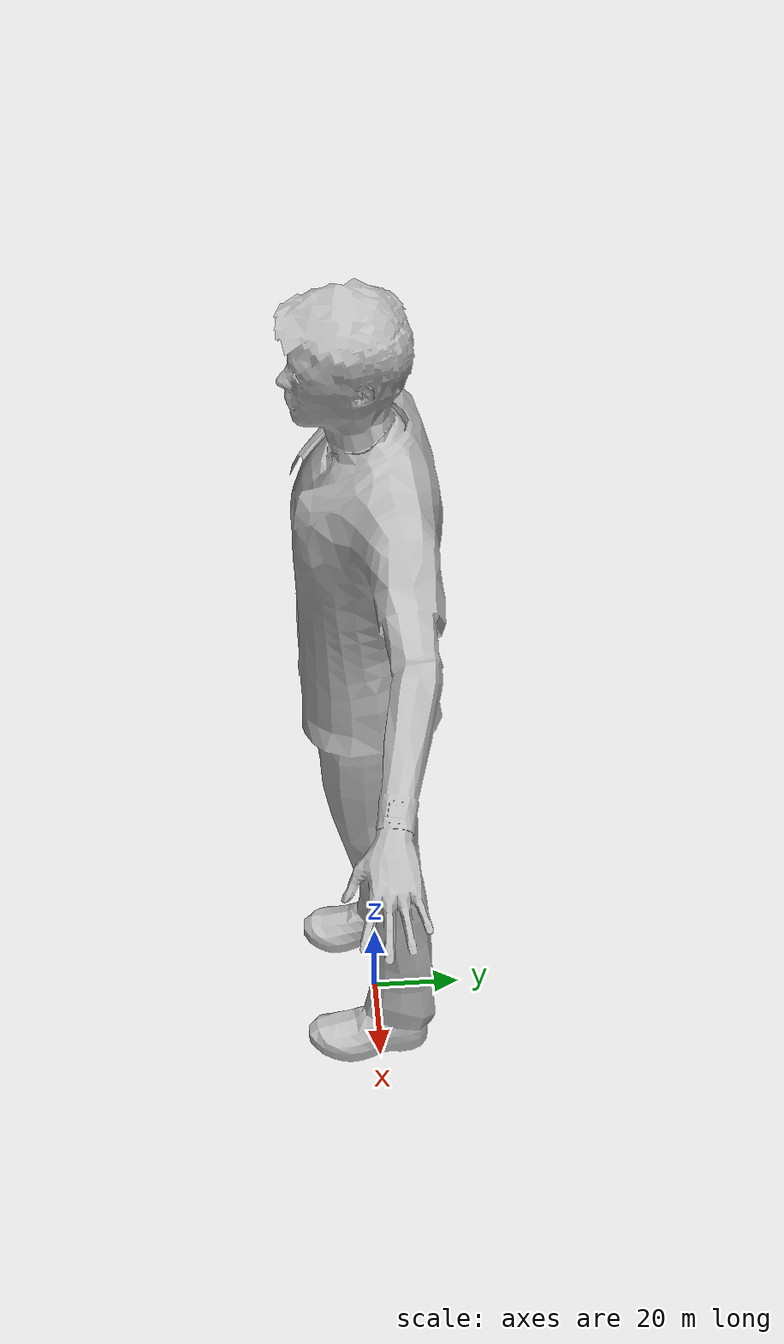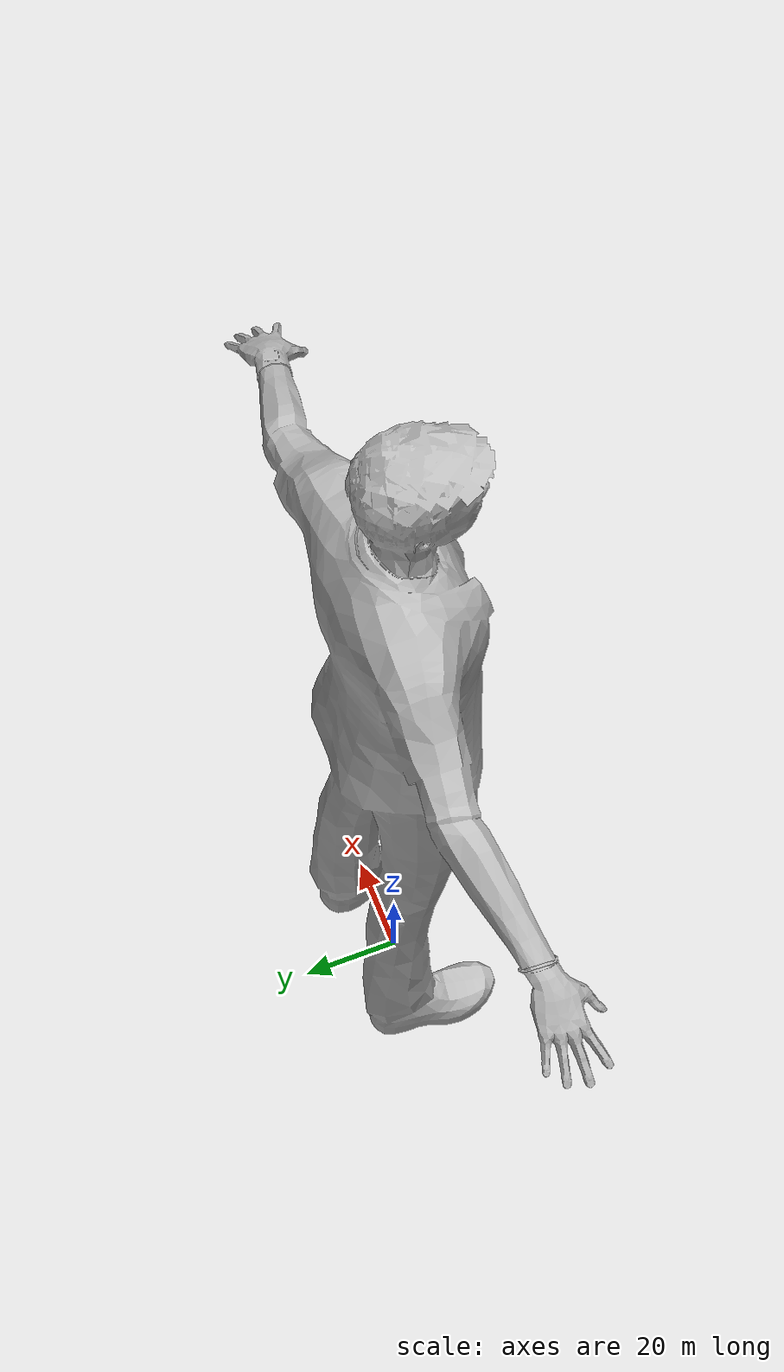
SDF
<?xml version="1.0" ?>
<sdf version="1.4">
  <model name="moving_human">
    <link name="human_link">
      <gravity>false</gravity>
      <inertial>
        <mass> 50 </mass>
        <inertia>
	  <ixx>50</ixx>
	  <ixy>0</ixy>
	  <ixz>0</ixz>
	  <iyy>50</iyy>
	  <izz>50</izz>
        </inertia>
      </inertial>
      <visual name="visual">
        <pose>0 0 0.0 0 0 0 </pose>
        <geometry>
 	  <mesh>
            <uri> model://MovingHuman/meshes/Man_Mp_Iphone.dae</uri>
	  </mesh>
        </geometry>
      </visual>
    </link>
    <plugin name="object_controller" filename="libgazebo_ros_planar_move.so">
      <commandTopic>cmd_vel</commandTopic>
      <odometryTopic>world</odometryTopic>
      <odometryFrame>world</odometryFrame>
      <odometryRate>30.0</odometryRate>
      <robotBaseFrame>human_link</robotBaseFrame>
    </plugin>
  </model>
</sdf>
